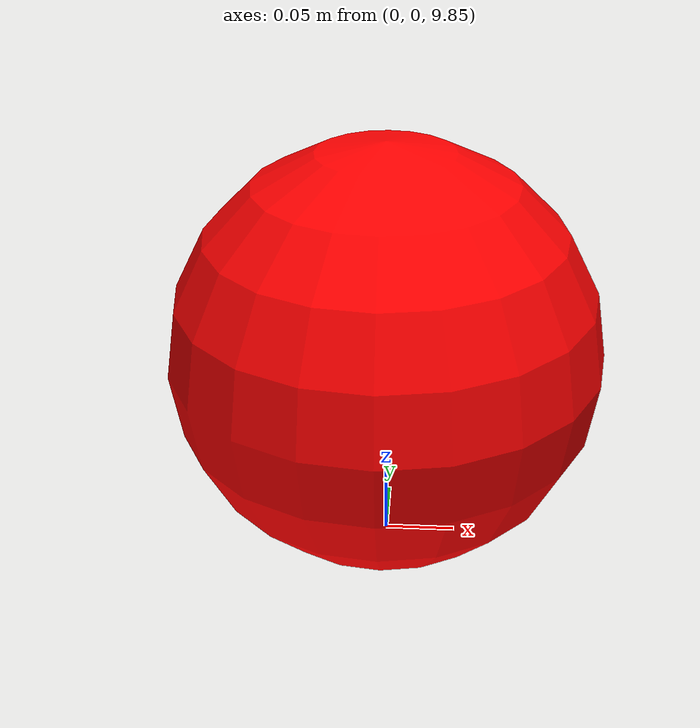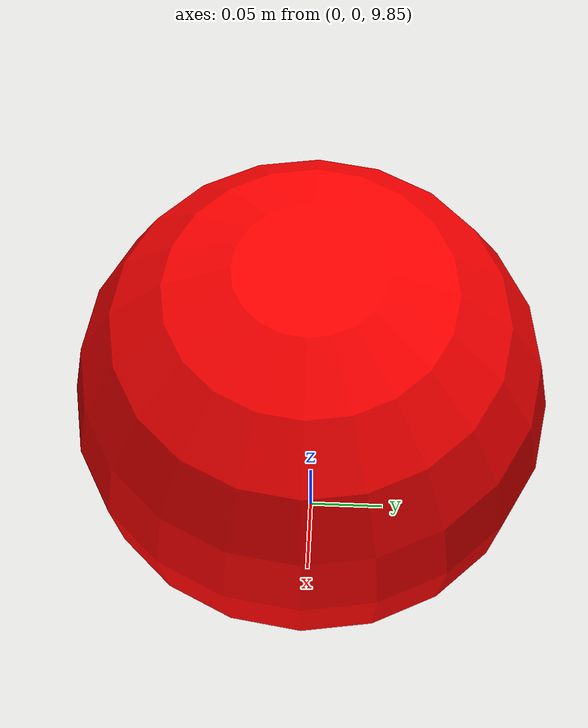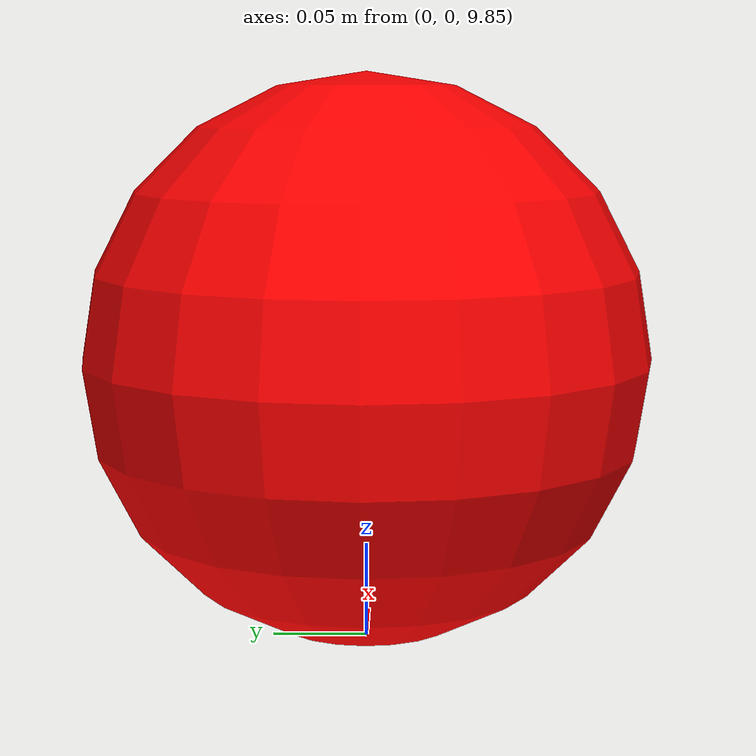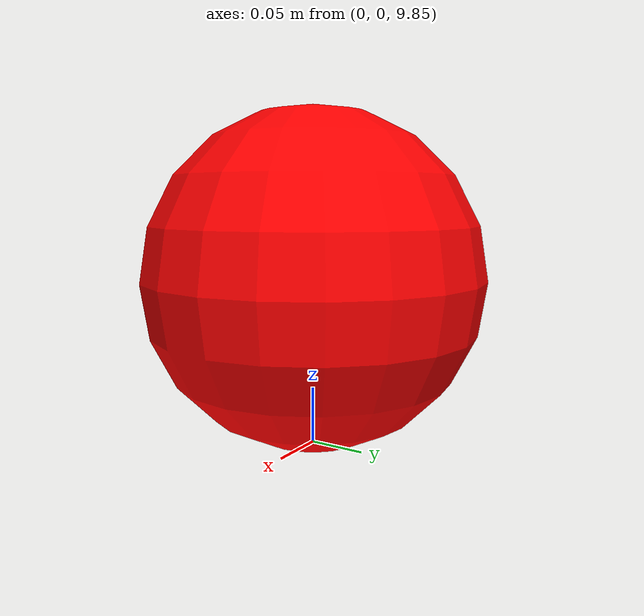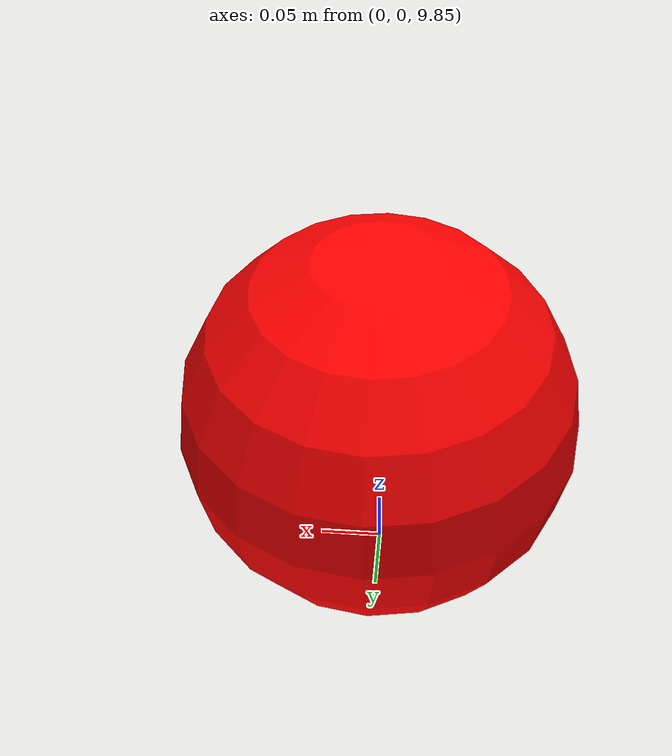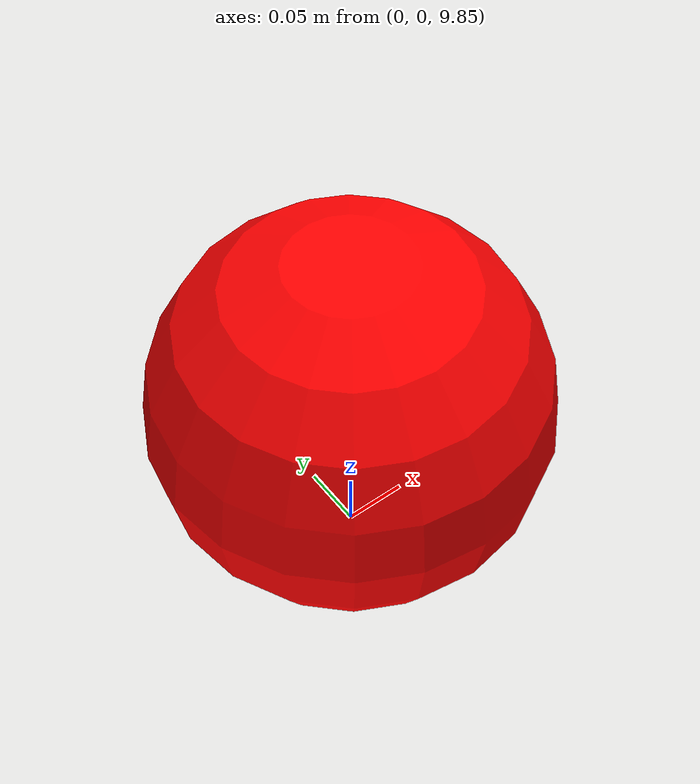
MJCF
<mujoco model="simple_scene">
    <!-- Define overall lighting, floor texture, and environment sky -->
    <worldbody>
        <light pos="0 0 3"/>
        <geom name="floor" type="plane" size="10 10 0.1" rgba="0.8 0.8 0.8 1"/>

        <!-- Define a dynamic body (a red ball that falls) -->
        <body name="falling_ball" pos="0 0 10">
            <!-- free joint gives the object 6 degrees of freedom (gravity applies) -->
            <freejoint/>
            <geom name="ball" type="sphere" size="0.15" rgba="1 0 0 1" mass="1"/>
        </body>
    </worldbody>
</mujoco>
